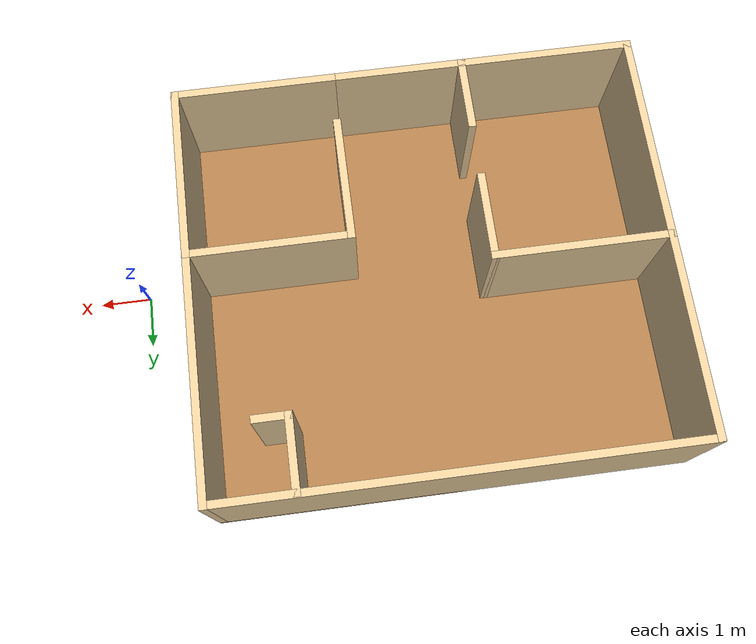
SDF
<?xml version='1.0'?>
<sdf version='1.7'>
  <model name='house'>
    <pose>-5.1575 0.675 0 0 -0 0</pose>
    <link name='Floor_1'>
      <collision name='Floor_1_Collision'>
        <geometry>
          <box>
            <size>9.2 8.1 0.1</size>
          </box>
        </geometry>
        <pose>0 0 0.05 0 -0 0</pose>
      </collision>
      <visual name='Floor_1_Visual'>
        <pose>0 0 0.05 0 -0 0</pose>
        <geometry>
          <box>
            <size>9.2 8.1 0.1</size>
          </box>
        </geometry>
        <material>
          <script>
            <uri>file://media/materials/scripts/gazebo.material</uri>
            <name>Gazebo/Wood</name>
          </script>
          <ambient>0.921569 0.807843 0.615686 1</ambient>
        </material>
        <meta>
          <layer>0</layer>
        </meta>
      </visual>
      <pose>-0.5575 -0 0 0 -0 0</pose>
    </link>
    <link name='Wall_38'>
      <collision name='Wall_38_Collision'>
        <geometry>
          <box>
            <size>3.25 0.15 2.5</size>
          </box>
        </geometry>
        <pose>0 0 1.25 0 -0 0</pose>
      </collision>
      <visual name='Wall_38_Visual'>
        <pose>0 0 1.25 0 -0 0</pose>
        <geometry>
          <box>
            <size>3.25 0.15 2.5</size>
          </box>
        </geometry>
        <material>
          <script>
            <uri>file://media/materials/scripts/gazebo.material</uri>
            <name>Gazebo/Grey</name>
          </script>
          <ambient>0.921569 0.807843 0.615686 1</ambient>
        </material>
        <meta>
          <layer>0</layer>
        </meta>
      </visual>
      <pose>2.4175 -3.975 0 0 -0 0</pose>
    </link>
    <link name='Wall_39'>
      <collision name='Wall_39_Collision'>
        <geometry>
          <box>
            <size>3.5 0.15 2.5</size>
          </box>
        </geometry>
        <pose>0 0 1.25 0 -0 0</pose>
      </collision>
      <visual name='Wall_39_Visual'>
        <pose>0 0 1.25 0 -0 0</pose>
        <geometry>
          <box>
            <size>3.5 0.15 2.5</size>
          </box>
        </geometry>
        <material>
          <script>
            <uri>file://media/materials/scripts/gazebo.material</uri>
            <name>Gazebo/Grey</name>
          </script>
          <ambient>0.921569 0.807843 0.615686 1</ambient>
        </material>
        <meta>
          <layer>0</layer>
        </meta>
      </visual>
      <pose>3.9675 -2.3 0 0 -0 1.5708</pose>
    </link>
    <link name='Wall_40'>
      <collision name='Wall_40_Collision'>
        <geometry>
          <box>
            <size>3.25 0.15 2.5</size>
          </box>
        </geometry>
        <pose>0 0 1.25 0 -0 0</pose>
      </collision>
      <visual name='Wall_40_Visual'>
        <pose>0 0 1.25 0 -0 0</pose>
        <geometry>
          <box>
            <size>3.25 0.15 2.5</size>
          </box>
        </geometry>
        <material>
          <script>
            <uri>file://media/materials/scripts/gazebo.material</uri>
            <name>Gazebo/Grey</name>
          </script>
          <ambient>0.921569 0.807843 0.615686 1</ambient>
        </material>
        <meta>
          <layer>0</layer>
        </meta>
      </visual>
      <pose>2.4175 -0.625 0 0 -0 3.14159</pose>
    </link>
    <link name='Wall_41'>
      <collision name='Wall_41_Collision'>
        <geometry>
          <box>
            <size>2.5 0.15 2.5</size>
          </box>
        </geometry>
        <pose>0 0 1.25 0 -0 0</pose>
      </collision>
      <visual name='Wall_41_Visual'>
        <pose>0 0 1.25 0 -0 0</pose>
        <geometry>
          <box>
            <size>2.5 0.15 2.5</size>
          </box>
        </geometry>
        <material>
          <script>
            <uri>file://media/materials/scripts/gazebo.material</uri>
            <name>Gazebo/Grey</name>
          </script>
          <ambient>0.921569 0.807843 0.615686 1</ambient>
        </material>
        <meta>
          <layer>0</layer>
        </meta>
      </visual>
      <pose>0.8675 -1.8 0 0 -0 -1.5708</pose>
    </link>
    <link name='Wall_42'>
      <collision name='Wall_42_Collision'>
        <geometry>
          <box>
            <size>2.75 0.15 2.5</size>
          </box>
        </geometry>
        <pose>0 0 1.25 0 -0 0</pose>
      </collision>
      <visual name='Wall_42_Visual'>
        <pose>0 0 1.25 0 -0 0</pose>
        <geometry>
          <box>
            <size>2.75 0.15 2.5</size>
          </box>
        </geometry>
        <material>
          <script>
            <uri>file://media/materials/scripts/gazebo.material</uri>
            <name>Gazebo/Grey</name>
          </script>
          <ambient>0.921569 0.807843 0.615686 1</ambient>
        </material>
        <meta>
          <layer>0</layer>
        </meta>
      </visual>
      <pose>-0.4325 -3.975 0 0 -0 3.14159</pose>
    </link>
    <link name='Wall_43'>
      <collision name='Wall_43_Collision'>
        <geometry>
          <box>
            <size>1.5 0.15 2.5</size>
          </box>
        </geometry>
        <pose>0 0 1.25 0 -0 0</pose>
      </collision>
      <visual name='Wall_43_Visual'>
        <pose>0 0 1.25 0 -0 0</pose>
        <geometry>
          <box>
            <size>1.5 0.15 2.5</size>
          </box>
        </geometry>
        <material>
          <script>
            <uri>file://media/materials/scripts/gazebo.material</uri>
            <name>Gazebo/Grey</name>
          </script>
          <ambient>0.921569 0.807843 0.615686 1</ambient>
        </material>
        <meta>
          <layer>0</layer>
        </meta>
      </visual>
      <pose>-1.7325 -3.3 0 0 -0 1.5708</pose>
    </link>
    <link name='Wall_44'>
      <collision name='Wall_44_Collision'>
        <geometry>
          <box>
            <size>3.5 0.15 2.5</size>
          </box>
        </geometry>
        <pose>0 0 1.25 0 -0 0</pose>
      </collision>
      <visual name='Wall_44_Visual'>
        <pose>0 0 1.25 0 -0 0</pose>
        <geometry>
          <box>
            <size>3.5 0.15 2.5</size>
          </box>
        </geometry>
        <material>
          <script>
            <uri>file://media/materials/scripts/gazebo.material</uri>
            <name>Gazebo/Grey</name>
          </script>
          <ambient>0.921569 0.807843 0.615686 1</ambient>
        </material>
        <meta>
          <layer>0</layer>
        </meta>
      </visual>
      <pose>-3.4075 -3.975 0 0 -0 3.14159</pose>
    </link>
    <link name='Wall_45'>
      <collision name='Wall_45_Collision'>
        <geometry>
          <box>
            <size>4.25 0.15 2.5</size>
          </box>
        </geometry>
        <pose>0 0 1.25 0 -0 0</pose>
      </collision>
      <visual name='Wall_45_Visual'>
        <pose>0 0 1.25 0 -0 0</pose>
        <geometry>
          <box>
            <size>4.25 0.15 2.5</size>
          </box>
        </geometry>
        <material>
          <script>
            <uri>file://media/materials/scripts/gazebo.material</uri>
            <name>Gazebo/Grey</name>
          </script>
          <ambient>0.921569 0.807843 0.615686 1</ambient>
        </material>
        <meta>
          <layer>0</layer>
        </meta>
      </visual>
      <pose>-5.0825 -1.925 0 0 -0 1.5708</pose>
    </link>
    <link name='Wall_46'>
      <collision name='Wall_46_Collision'>
        <geometry>
          <box>
            <size>3.5 0.15 2.5</size>
          </box>
        </geometry>
        <pose>0 0 1.25 0 -0 0</pose>
      </collision>
      <visual name='Wall_46_Visual'>
        <pose>0 0 1.25 0 -0 0</pose>
        <geometry>
          <box>
            <size>3.5 0.15 2.5</size>
          </box>
        </geometry>
        <material>
          <script>
            <uri>file://media/materials/scripts/gazebo.material</uri>
            <name>Gazebo/Grey</name>
          </script>
          <ambient>0.921569 0.807843 0.615686 1</ambient>
        </material>
        <meta>
          <layer>0</layer>
        </meta>
      </visual>
      <pose>-3.4075 0.125 0 0 -0 0</pose>
    </link>
    <link name='Wall_47'>
      <collision name='Wall_47_Collision'>
        <geometry>
          <box>
            <size>1.75 0.15 2.5</size>
          </box>
        </geometry>
        <pose>0 0 1.25 0 -0 0</pose>
      </collision>
      <visual name='Wall_47_Visual'>
        <pose>0 0 1.25 0 -0 0</pose>
        <geometry>
          <box>
            <size>1.75 0.15 2.5</size>
          </box>
        </geometry>
        <material>
          <script>
            <uri>file://media/materials/scripts/gazebo.material</uri>
            <name>Gazebo/Grey</name>
          </script>
          <ambient>0.921569 0.807843 0.615686 1</ambient>
        </material>
        <meta>
          <layer>0</layer>
        </meta>
      </visual>
      <pose>-1.7325 -0.675 0 0 -0 -1.5708</pose>
    </link>
    <link name='Wall_48'>
      <collision name='Wall_48_Collision'>
        <geometry>
          <box>
            <size>4.75 0.15 2.5</size>
          </box>
        </geometry>
        <pose>0 0 1.25 0 -0 0</pose>
      </collision>
      <visual name='Wall_48_Visual'>
        <pose>0 0 1.25 0 -0 0</pose>
        <geometry>
          <box>
            <size>4.75 0.15 2.5</size>
          </box>
        </geometry>
        <material>
          <script>
            <uri>file://media/materials/scripts/gazebo.material</uri>
            <name>Gazebo/Grey</name>
          </script>
          <ambient>0.921569 0.807843 0.615686 1</ambient>
        </material>
        <meta>
          <layer>0</layer>
        </meta>
      </visual>
      <pose>3.9675 1.675 0 0 -0 1.5708</pose>
    </link>
    <link name='Wall_49'>
      <collision name='Wall_49_Collision'>
        <geometry>
          <box>
            <size>9.2 0.15 2.5</size>
          </box>
        </geometry>
        <pose>0 0 1.25 0 -0 0</pose>
      </collision>
      <visual name='Wall_49_Visual'>
        <pose>0 0 1.25 0 -0 0</pose>
        <geometry>
          <box>
            <size>9.2 0.15 2.5</size>
          </box>
        </geometry>
        <material>
          <script>
            <uri>file://media/materials/scripts/gazebo.material</uri>
            <name>Gazebo/Grey</name>
          </script>
          <ambient>0.921569 0.807843 0.615686 1</ambient>
        </material>
        <meta>
          <layer>0</layer>
        </meta>
      </visual>
      <pose>-0.5575 3.975 0 0 -0 3.14159</pose>
    </link>
    <link name='Wall_50'>
      <collision name='Wall_50_Collision'>
        <geometry>
          <box>
            <size>4 0.15 2.5</size>
          </box>
        </geometry>
        <pose>0 0 1.25 0 -0 0</pose>
      </collision>
      <visual name='Wall_50_Visual'>
        <pose>0 0 1.25 0 -0 0</pose>
        <geometry>
          <box>
            <size>4 0.15 2.5</size>
          </box>
        </geometry>
        <material>
          <script>
            <uri>file://media/materials/scripts/gazebo.material</uri>
            <name>Gazebo/Grey</name>
          </script>
          <ambient>0.921569 0.807843 0.615686 1</ambient>
        </material>
        <meta>
          <layer>0</layer>
        </meta>
      </visual>
      <pose>-5.0825 2.05 0 0 -0 -1.5708</pose>
    </link>
    <link name='Wall_51'>
      <collision name='Wall_51_Collision'>
        <geometry>
          <box>
            <size>1.5 0.15 2.5</size>
          </box>
        </geometry>
        <pose>0 0 1.25 0 -0 0</pose>
      </collision>
      <visual name='Wall_51_Visual'>
        <pose>0 0 1.25 0 -0 0</pose>
        <geometry>
          <box>
            <size>1.5 0.15 2.5</size>
          </box>
        </geometry>
        <material>
          <script>
            <uri>file://media/materials/scripts/gazebo.material</uri>
            <name>Gazebo/Grey</name>
          </script>
          <ambient>0.921569 0.807843 0.615686 1</ambient>
        </material>
        <meta>
          <layer>0</layer>
        </meta>
      </visual>
      <pose>2.36222 3.28213 0 0 -0 -1.5708</pose>
    </link>
    <link name='Wall_52'>
      <collision name='Wall_52_Collision'>
        <geometry>
          <box>
            <size>0.75 0.15 2.5</size>
          </box>
        </geometry>
        <pose>0 0 1.25 0 -0 0</pose>
      </collision>
      <visual name='Wall_52_Visual'>
        <pose>0 0 1.25 0 -0 0</pose>
        <geometry>
          <box>
            <size>0.75 0.15 2.5</size>
          </box>
        </geometry>
        <material>
          <script>
            <uri>file://media/materials/scripts/gazebo.material</uri>
            <name>Gazebo/Grey</name>
          </script>
          <ambient>0.921569 0.807843 0.615686 1</ambient>
        </material>
        <meta>
          <layer>0</layer>
        </meta>
      </visual>
      <pose>2.66222 2.60713 0 0 -0 0</pose>
    </link>
    <static>1</static>
  </model>
</sdf>
